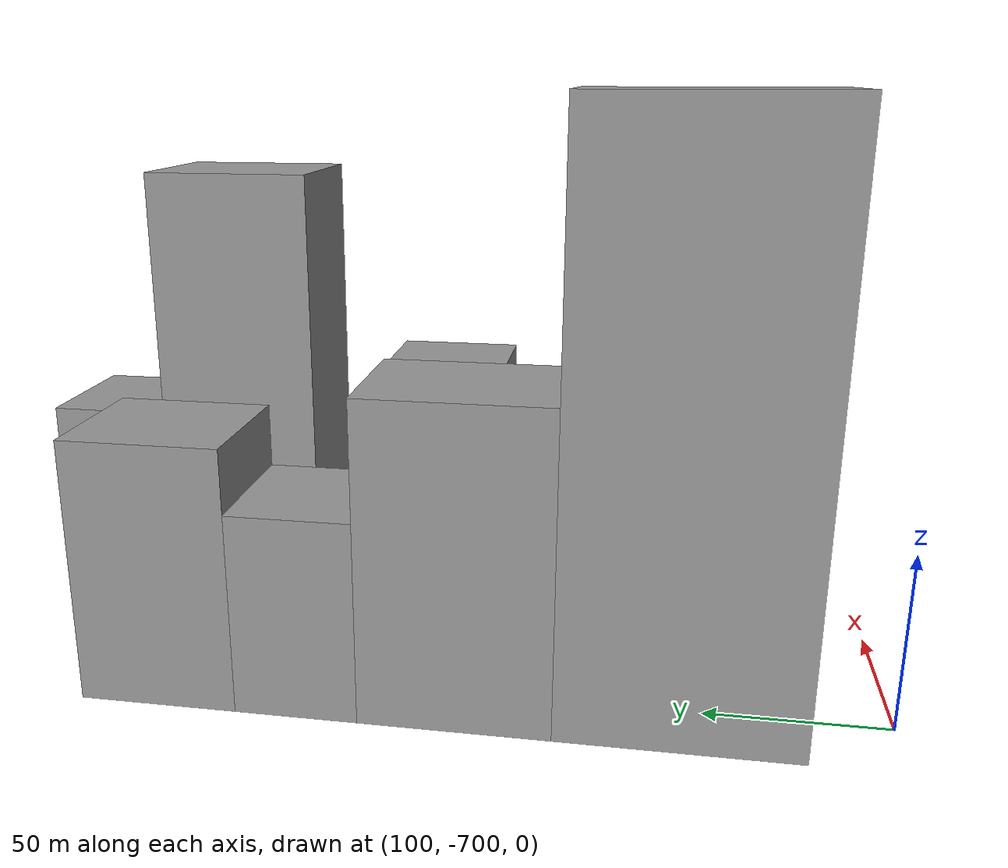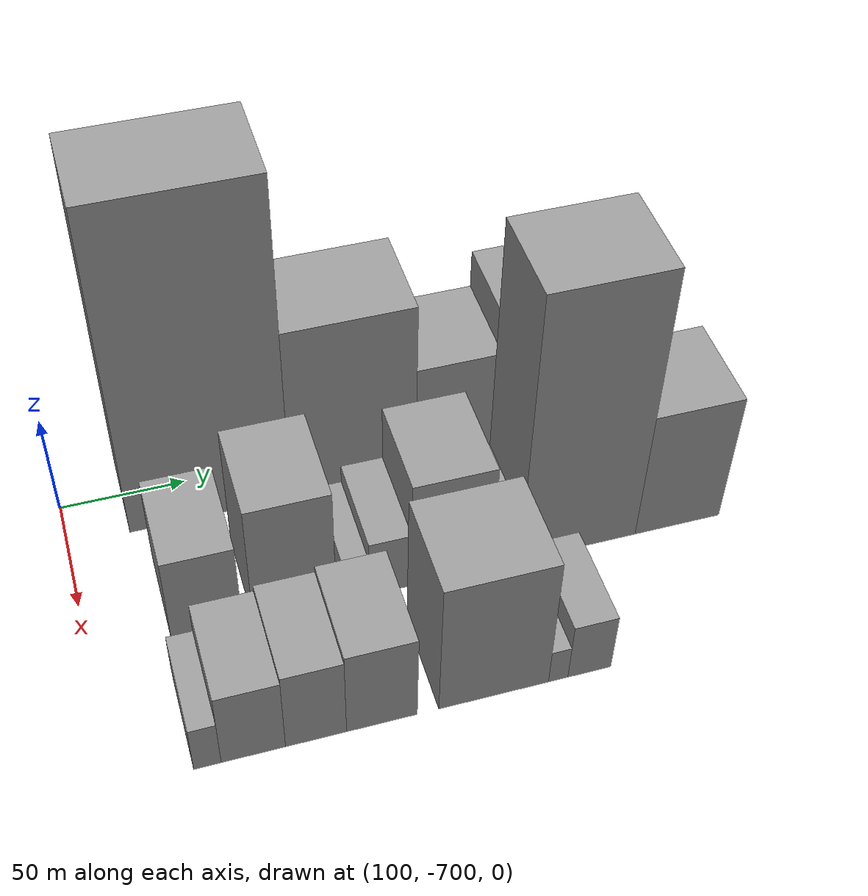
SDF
<sdf version="1.6">
 <world name="default">
  <model name="building_8">
   <static>1</static>
   <pose>100.0000 -643.2716 0 0.000000 0.000000 0.000000</pose>
   <link name="link">
    <pose>0 0 81.00 0 0 0</pose>
    <collision name="collision"><geometry><box><size>40.0000 64.5278 162.0000</size></box></geometry></collision>
    <visual name="visual">
     <cast_shadows>0</cast_shadows>
     <geometry><box><size>40.0000 64.5278 162.0000</size></box></geometry>
     <material>
      <script>
       <uri>model://grey_wall/materials/scripts</uri>
       <uri>model://grey_wall/materials/textures</uri>
       <name>vrc/grey_wall</name>
      </script>
     </material>
    </visual>
   </link>
  </model>
  <model name="building_9">
   <static>1</static>
   <pose>100.0000 -585.0858 0 0.000000 0.000000 0.000000</pose>
   <link name="link">
    <pose>0 0 45.00 0 0 0</pose>
    <collision name="collision"><geometry><box><size>40.0000 51.8437 90.0000</size></box></geometry></collision>
    <visual name="visual">
     <cast_shadows>0</cast_shadows>
     <geometry><box><size>40.0000 51.8437 90.0000</size></box></geometry>
     <material>
      <script>
       <uri>model://grey_wall/materials/scripts</uri>
       <uri>model://grey_wall/materials/textures</uri>
       <name>vrc/grey_wall</name>
      </script>
     </material>
    </visual>
   </link>
  </model>
  <model name="building_10">
   <static>1</static>
   <pose>100.0000 -542.1855 0 0.000000 0.000000 0.000000</pose>
   <link name="link">
    <pose>0 0 28.50 0 0 0</pose>
    <collision name="collision"><geometry><box><size>40.0000 33.9569 57.0000</size></box></geometry></collision>
    <visual name="visual">
     <cast_shadows>0</cast_shadows>
     <geometry><box><size>40.0000 33.9569 57.0000</size></box></geometry>
     <material>
      <script>
       <uri>model://grey_wall/materials/scripts</uri>
       <uri>model://grey_wall/materials/textures</uri>
       <name>vrc/grey_wall</name>
      </script>
     </material>
    </visual>
   </link>
  </model>
  <model name="building_11">
   <static>1</static>
   <pose>100.0000 -503.0766 0 0.000000 0.000000 0.000000</pose>
   <link name="link">
    <pose>0 0 37.50 0 0 0</pose>
    <collision name="collision"><geometry><box><size>40.0000 44.2611 75.0000</size></box></geometry></collision>
    <visual name="visual">
     <cast_shadows>0</cast_shadows>
     <geometry><box><size>40.0000 44.2611 75.0000</size></box></geometry>
     <material>
      <script>
       <uri>model://grey_wall/materials/scripts</uri>
       <uri>model://grey_wall/materials/textures</uri>
       <name>vrc/grey_wall</name>
      </script>
     </material>
    </visual>
   </link>
  </model>
  <model name="building_57">
   <static>1</static>
   <pose>155.0000 -655.8796 0 0.000000 0.000000 0.000000</pose>
   <link name="link">
    <pose>0 0 22.50 0 0 0</pose>
    <collision name="collision"><geometry><box><size>40.0000 26.7751 45.0000</size></box></geometry></collision>
    <visual name="visual">
     <cast_shadows>0</cast_shadows>
     <geometry><box><size>40.0000 26.7751 45.0000</size></box></geometry>
     <material>
      <script>
       <uri>model://grey_wall/materials/scripts</uri>
       <uri>model://grey_wall/materials/textures</uri>
       <name>vrc/grey_wall</name>
      </script>
     </material>
    </visual>
   </link>
  </model>
  <model name="building_58">
   <static>1</static>
   <pose>155.0000 -622.5172 0 0.000000 0.000000 0.000000</pose>
   <link name="link">
    <pose>0 0 31.50 0 0 0</pose>
    <collision name="collision"><geometry><box><size>40.0000 31.9498 63.0000</size></box></geometry></collision>
    <visual name="visual">
     <cast_shadows>0</cast_shadows>
     <geometry><box><size>40.0000 31.9498 63.0000</size></box></geometry>
     <material>
      <script>
       <uri>model://grey_wall/materials/scripts</uri>
       <uri>model://grey_wall/materials/textures</uri>
       <name>vrc/grey_wall</name>
      </script>
     </material>
    </visual>
   </link>
  </model>
  <model name="building_59">
   <static>1</static>
   <pose>155.0000 -598.5974 0 0.000000 0.000000 0.000000</pose>
   <link name="link">
    <pose>0 0 10.50 0 0 0</pose>
    <collision name="collision"><geometry><box><size>40.0000 9.8899 21.0000</size></box></geometry></collision>
    <visual name="visual">
     <cast_shadows>0</cast_shadows>
     <geometry><box><size>40.0000 9.8899 21.0000</size></box></geometry>
     <material>
      <script>
       <uri>model://grey_wall/materials/scripts</uri>
       <uri>model://grey_wall/materials/textures</uri>
       <name>vrc/grey_wall</name>
      </script>
     </material>
    </visual>
   </link>
  </model>
  <model name="building_60">
   <static>1</static>
   <pose>155.0000 -585.4388 0 0.000000 0.000000 0.000000</pose>
   <link name="link">
    <pose>0 0 15.00 0 0 0</pose>
    <collision name="collision"><geometry><box><size>40.0000 16.4272 30.0000</size></box></geometry></collision>
    <visual name="visual">
     <cast_shadows>0</cast_shadows>
     <geometry><box><size>40.0000 16.4272 30.0000</size></box></geometry>
     <material>
      <script>
       <uri>model://grey_wall/materials/scripts</uri>
       <uri>model://grey_wall/materials/textures</uri>
       <name>vrc/grey_wall</name>
      </script>
     </material>
    </visual>
   </link>
  </model>
  <model name="building_61">
   <static>1</static>
   <pose>155.0000 -561.0946 0 0.000000 0.000000 0.000000</pose>
   <link name="link">
    <pose>0 0 28.50 0 0 0</pose>
    <collision name="collision"><geometry><box><size>40.0000 32.2613 57.0000</size></box></geometry></collision>
    <visual name="visual">
     <cast_shadows>0</cast_shadows>
     <geometry><box><size>40.0000 32.2613 57.0000</size></box></geometry>
     <material>
      <script>
       <uri>model://grey_wall/materials/scripts</uri>
       <uri>model://grey_wall/materials/textures</uri>
       <name>vrc/grey_wall</name>
      </script>
     </material>
    </visual>
   </link>
  </model>
  <model name="building_62">
   <static>1</static>
   <pose>155.0000 -539.3134 0 0.000000 0.000000 0.000000</pose>
   <link name="link">
    <pose>0 0 12.00 0 0 0</pose>
    <collision name="collision"><geometry><box><size>40.0000 11.3011 24.0000</size></box></geometry></collision>
    <visual name="visual">
     <cast_shadows>0</cast_shadows>
     <geometry><box><size>40.0000 11.3011 24.0000</size></box></geometry>
     <material>
      <script>
       <uri>model://grey_wall/materials/scripts</uri>
       <uri>model://grey_wall/materials/textures</uri>
       <name>vrc/grey_wall</name>
      </script>
     </material>
    </visual>
   </link>
  </model>
  <model name="building_63">
   <static>1</static>
   <pose>155.0000 -509.8945 0 0.000000 0.000000 0.000000</pose>
   <link name="link">
    <pose>0 0 69.00 0 0 0</pose>
    <collision name="collision"><geometry><box><size>40.0000 47.5366 138.0000</size></box></geometry></collision>
    <visual name="visual">
     <cast_shadows>0</cast_shadows>
     <geometry><box><size>40.0000 47.5366 138.0000</size></box></geometry>
     <material>
      <script>
       <uri>model://grey_wall/materials/scripts</uri>
       <uri>model://grey_wall/materials/textures</uri>
       <name>vrc/grey_wall</name>
      </script>
     </material>
    </visual>
   </link>
  </model>
  <model name="building_64">
   <static>1</static>
   <pose>155.0000 -468.4317 0 0.000000 0.000000 0.000000</pose>
   <link name="link">
    <pose>0 0 33.00 0 0 0</pose>
    <collision name="collision"><geometry><box><size>40.0000 35.3890 66.0000</size></box></geometry></collision>
    <visual name="visual">
     <cast_shadows>0</cast_shadows>
     <geometry><box><size>40.0000 35.3890 66.0000</size></box></geometry>
     <material>
      <script>
       <uri>model://grey_wall/materials/scripts</uri>
       <uri>model://grey_wall/materials/textures</uri>
       <name>vrc/grey_wall</name>
      </script>
     </material>
    </visual>
   </link>
  </model>
  <model name="building_107">
   <static>1</static>
   <pose>210.0000 -666.9719 0 0.000000 0.000000 0.000000</pose>
   <link name="link">
    <pose>0 0 12.00 0 0 0</pose>
    <collision name="collision"><geometry><box><size>40.0000 9.6814 24.0000</size></box></geometry></collision>
    <visual name="visual">
     <cast_shadows>0</cast_shadows>
     <geometry><box><size>40.0000 9.6814 24.0000</size></box></geometry>
     <material>
      <script>
       <uri>model://grey_wall/materials/scripts</uri>
       <uri>model://grey_wall/materials/textures</uri>
       <name>vrc/grey_wall</name>
      </script>
     </material>
    </visual>
   </link>
  </model>
  <model name="building_108">
   <static>1</static>
   <pose>210.0000 -650.6922 0 0.000000 0.000000 0.000000</pose>
   <link name="link">
    <pose>0 0 19.50 0 0 0</pose>
    <collision name="collision"><geometry><box><size>40.0000 22.8780 39.0000</size></box></geometry></collision>
    <visual name="visual">
     <cast_shadows>0</cast_shadows>
     <geometry><box><size>40.0000 22.8780 39.0000</size></box></geometry>
     <material>
      <script>
       <uri>model://grey_wall/materials/scripts</uri>
       <uri>model://grey_wall/materials/textures</uri>
       <name>vrc/grey_wall</name>
      </script>
     </material>
    </visual>
   </link>
  </model>
  <model name="building_109">
   <static>1</static>
   <pose>210.0000 -628.2325 0 0.000000 0.000000 0.000000</pose>
   <link name="link">
    <pose>0 0 21.00 0 0 0</pose>
    <collision name="collision"><geometry><box><size>40.0000 22.0414 42.0000</size></box></geometry></collision>
    <visual name="visual">
     <cast_shadows>0</cast_shadows>
     <geometry><box><size>40.0000 22.0414 42.0000</size></box></geometry>
     <material>
      <script>
       <uri>model://grey_wall/materials/scripts</uri>
       <uri>model://grey_wall/materials/textures</uri>
       <name>vrc/grey_wall</name>
      </script>
     </material>
    </visual>
   </link>
  </model>
  <model name="building_110">
   <static>1</static>
   <pose>210.0000 -604.2411 0 0.000000 0.000000 0.000000</pose>
   <link name="link">
    <pose>0 0 22.50 0 0 0</pose>
    <collision name="collision"><geometry><box><size>40.0000 25.9413 45.0000</size></box></geometry></collision>
    <visual name="visual">
     <cast_shadows>0</cast_shadows>
     <geometry><box><size>40.0000 25.9413 45.0000</size></box></geometry>
     <material>
      <script>
       <uri>model://grey_wall/materials/scripts</uri>
       <uri>model://grey_wall/materials/textures</uri>
       <name>vrc/grey_wall</name>
      </script>
     </material>
    </visual>
   </link>
  </model>
  <model name="building_111">
   <static>1</static>
   <pose>210.0000 -562.5917 0 0.000000 0.000000 0.000000</pose>
   <link name="link">
    <pose>0 0 34.50 0 0 0</pose>
    <collision name="collision"><geometry><box><size>40.0000 41.3576 69.0000</size></box></geometry></collision>
    <visual name="visual">
     <cast_shadows>0</cast_shadows>
     <geometry><box><size>40.0000 41.3576 69.0000</size></box></geometry>
     <material>
      <script>
       <uri>model://grey_wall/materials/scripts</uri>
       <uri>model://grey_wall/materials/textures</uri>
       <name>vrc/grey_wall</name>
      </script>
     </material>
    </visual>
   </link>
  </model>
  <model name="building_112">
   <static>1</static>
   <pose>210.0000 -538.1920 0 0.000000 0.000000 0.000000</pose>
   <link name="link">
    <pose>0 0 9.00 0 0 0</pose>
    <collision name="collision"><geometry><box><size>40.0000 7.4418 18.0000</size></box></geometry></collision>
    <visual name="visual">
     <cast_shadows>0</cast_shadows>
     <geometry><box><size>40.0000 7.4418 18.0000</size></box></geometry>
     <material>
      <script>
       <uri>model://grey_wall/materials/scripts</uri>
       <uri>model://grey_wall/materials/textures</uri>
       <name>vrc/grey_wall</name>
      </script>
     </material>
    </visual>
   </link>
  </model>
  <model name="building_113">
   <static>1</static>
   <pose>210.0000 -526.1762 0 0.000000 0.000000 0.000000</pose>
   <link name="link">
    <pose>0 0 15.00 0 0 0</pose>
    <collision name="collision"><geometry><box><size>40.0000 16.5898 30.0000</size></box></geometry></collision>
    <visual name="visual">
     <cast_shadows>0</cast_shadows>
     <geometry><box><size>40.0000 16.5898 30.0000</size></box></geometry>
     <material>
      <script>
       <uri>model://grey_wall/materials/scripts</uri>
       <uri>model://grey_wall/materials/textures</uri>
       <name>vrc/grey_wall</name>
      </script>
     </material>
    </visual>
   </link>
  </model>
 </world>
</sdf>
